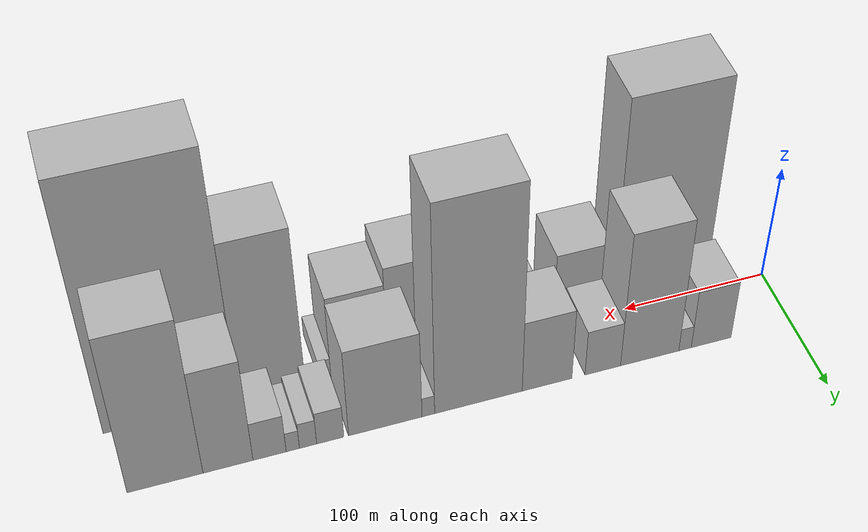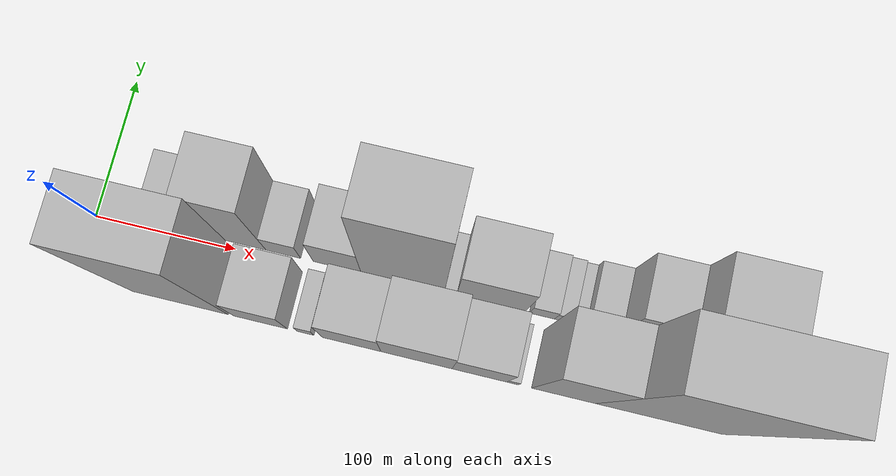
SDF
<sdf version="1.6">
 <world name="default">
  <scene>
   <sky><clouds><speed>12</speed></clouds></sky>
   <ambient>0.4 0.4 0.4 1</ambient>
   <background>0.7 0.7 0.7 1</background>
   <shadows>1</shadows>
  </scene>
  <gravity>0 0 -9.8066</gravity>
  <magnetic_field>6e-06 2.3e-05 -4.2e-05</magnetic_field>
  <physics default="0" name="default_physics" type="ode">
   <ode>
    <solver>
     <type>quick</type>
     <iters>10</iters>
     <sor>1.0</sor>
     <use_dynamic_moi_rescaling>0</use_dynamic_moi_rescaling>
    </solver>
    <constraints>
     <cfm>0</cfm>
     <erp>0.2</erp>
     <contact_max_correcting_vel>100</contact_max_correcting_vel>
     <contact_surface_layer>0.001</contact_surface_layer>
    </constraints>
   </ode>
   <max_step_size>0.004</max_step_size>
   <real_time_factor>1</real_time_factor>
   <real_time_update_rate>250</real_time_update_rate>
  </physics>
  <light name="sun" type="directional">
   <pose>0 0 10 0 0 0</pose>
   <diffuse>0.8 0.8 0.8 1</diffuse>
   <specular>0.2 0.2 0.2 1</specular>
   <attenuation>
    <range>1000</range>
    <constant>0.9</constant>
    <linear>0.01</linear>
    <quadratic>0.001</quadratic>
   </attenuation>
   <direction>-0.5 0.1 -0.9</direction>
  </light>
  <model name="building_1">
   <static>1</static>
   <pose>57.1358 24.5000 0 0.000000 0.000000 1.570796</pose>
   <link name="link">
    <pose>0 0 27.00 0 0 0</pose>
    <collision name="collision"><geometry><box><size>40.0000 28.2716 54.0000</size></box></geometry></collision>
    <visual name="visual">
     <cast_shadows>0</cast_shadows>
     <geometry><box><size>40.0000 28.2716 54.0000</size></box></geometry>
     <material>
      <script>
       <uri>model://HANNAS_wall/materials/scripts</uri>
       <uri>model://HANNAS_wall/materials/textures</uri>
       <name>vrc/HANNAS_wall</name>
      </script>
     </material>
    </visual>
   </link>
  </model>
  <model name="building_2">
   <static>1</static>
   <pose>75.6466 24.5000 0 0.000000 0.000000 1.570796</pose>
   <link name="link">
    <pose>0 0 10.50 0 0 0</pose>
    <collision name="collision"><geometry><box><size>40.0000 8.7501 21.0000</size></box></geometry></collision>
    <visual name="visual">
     <cast_shadows>0</cast_shadows>
     <geometry><box><size>40.0000 8.7501 21.0000</size></box></geometry>
     <material>
      <script>
       <uri>model://HANNAS_wall/materials/scripts</uri>
       <uri>model://HANNAS_wall/materials/textures</uri>
       <name>vrc/HANNAS_wall</name>
      </script>
     </material>
    </visual>
   </link>
  </model>
  <model name="building_3">
   <static>1</static>
   <pose>100.4074 24.5000 0 0.000000 0.000000 1.570796</pose>
   <link name="link">
    <pose>0 0 61.50 0 0 0</pose>
    <collision name="collision"><geometry><box><size>40.0000 40.7714 123.0000</size></box></geometry></collision>
    <visual name="visual">
     <cast_shadows>0</cast_shadows>
     <geometry><box><size>40.0000 40.7714 123.0000</size></box></geometry>
     <material>
      <script>
       <uri>model://HANNAS_wall/materials/scripts</uri>
       <uri>model://HANNAS_wall/materials/textures</uri>
       <name>vrc/HANNAS_wall</name>
      </script>
     </material>
    </visual>
   </link>
  </model>
  <model name="building_4">
   <static>1</static>
   <pose>133.0607 24.5000 0 0.000000 0.000000 1.570796</pose>
   <link name="link">
    <pose>0 0 21.00 0 0 0</pose>
    <collision name="collision"><geometry><box><size>40.0000 24.5352 42.0000</size></box></geometry></collision>
    <visual name="visual">
     <cast_shadows>0</cast_shadows>
     <geometry><box><size>40.0000 24.5352 42.0000</size></box></geometry>
     <material>
      <script>
       <uri>model://HANNAS_wall/materials/scripts</uri>
       <uri>model://HANNAS_wall/materials/textures</uri>
       <name>vrc/HANNAS_wall</name>
      </script>
     </material>
    </visual>
   </link>
  </model>
  <model name="building_5">
   <static>1</static>
   <pose>171.2471 24.5000 0 0.000000 0.000000 1.570796</pose>
   <link name="link">
    <pose>0 0 33.00 0 0 0</pose>
    <collision name="collision"><geometry><box><size>40.0000 33.8376 66.0000</size></box></geometry></collision>
    <visual name="visual">
     <cast_shadows>0</cast_shadows>
     <geometry><box><size>40.0000 33.8376 66.0000</size></box></geometry>
     <material>
      <script>
       <uri>model://HANNAS_wall/materials/scripts</uri>
       <uri>model://HANNAS_wall/materials/textures</uri>
       <name>vrc/HANNAS_wall</name>
      </script>
     </material>
    </visual>
   </link>
  </model>
  <model name="building_6">
   <static>1</static>
   <pose>217.4419 24.5000 0 0.000000 0.000000 1.570796</pose>
   <link name="link">
    <pose>0 0 94.50 0 0 0</pose>
    <collision name="collision"><geometry><box><size>40.0000 58.5521 189.0000</size></box></geometry></collision>
    <visual name="visual">
     <cast_shadows>0</cast_shadows>
     <geometry><box><size>40.0000 58.5521 189.0000</size></box></geometry>
     <material>
      <script>
       <uri>model://HANNAS_wall/materials/scripts</uri>
       <uri>model://HANNAS_wall/materials/textures</uri>
       <name>vrc/HANNAS_wall</name>
      </script>
     </material>
    </visual>
   </link>
  </model>
  <model name="building_7">
   <static>1</static>
   <pose>250.9183 24.5000 0 0.000000 0.000000 1.570796</pose>
   <link name="link">
    <pose>0 0 9.00 0 0 0</pose>
    <collision name="collision"><geometry><box><size>40.0000 8.4008 18.0000</size></box></geometry></collision>
    <visual name="visual">
     <cast_shadows>0</cast_shadows>
     <geometry><box><size>40.0000 8.4008 18.0000</size></box></geometry>
     <material>
      <script>
       <uri>model://HANNAS_wall/materials/scripts</uri>
       <uri>model://HANNAS_wall/materials/textures</uri>
       <name>vrc/HANNAS_wall</name>
      </script>
     </material>
    </visual>
   </link>
  </model>
  <model name="building_8">
   <static>1</static>
   <pose>279.1200 24.5000 0 0.000000 0.000000 1.570796</pose>
   <link name="link">
    <pose>0 0 40.50 0 0 0</pose>
    <collision name="collision"><geometry><box><size>40.0000 48.0025 81.0000</size></box></geometry></collision>
    <visual name="visual">
     <cast_shadows>0</cast_shadows>
     <geometry><box><size>40.0000 48.0025 81.0000</size></box></geometry>
     <material>
      <script>
       <uri>model://HANNAS_wall/materials/scripts</uri>
       <uri>model://HANNAS_wall/materials/textures</uri>
       <name>vrc/HANNAS_wall</name>
      </script>
     </material>
    </visual>
   </link>
  </model>
  <model name="building_9">
   <static>1</static>
   <pose>314.8700 24.5000 0 0.000000 0.000000 1.570796</pose>
   <link name="link">
    <pose>0 0 15.00 0 0 0</pose>
    <collision name="collision"><geometry><box><size>40.0000 17.4976 30.0000</size></box></geometry></collision>
    <visual name="visual">
     <cast_shadows>0</cast_shadows>
     <geometry><box><size>40.0000 17.4976 30.0000</size></box></geometry>
     <material>
      <script>
       <uri>model://HANNAS_wall/materials/scripts</uri>
       <uri>model://HANNAS_wall/materials/textures</uri>
       <name>vrc/HANNAS_wall</name>
      </script>
     </material>
    </visual>
   </link>
  </model>
  <model name="building_10">
   <static>1</static>
   <pose>329.1398 24.5000 0 0.000000 0.000000 1.570796</pose>
   <link name="link">
    <pose>0 0 12.00 0 0 0</pose>
    <collision name="collision"><geometry><box><size>40.0000 11.0420 24.0000</size></box></geometry></collision>
    <visual name="visual">
     <cast_shadows>0</cast_shadows>
     <geometry><box><size>40.0000 11.0420 24.0000</size></box></geometry>
     <material>
      <script>
       <uri>model://HANNAS_wall/materials/scripts</uri>
       <uri>model://HANNAS_wall/materials/textures</uri>
       <name>vrc/HANNAS_wall</name>
      </script>
     </material>
    </visual>
   </link>
  </model>
  <model name="building_11">
   <static>1</static>
   <pose>338.8888 24.5000 0 0.000000 0.000000 1.570796</pose>
   <link name="link">
    <pose>0 0 9.00 0 0 0</pose>
    <collision name="collision"><geometry><box><size>40.0000 8.4560 18.0000</size></box></geometry></collision>
    <visual name="visual">
     <cast_shadows>0</cast_shadows>
     <geometry><box><size>40.0000 8.4560 18.0000</size></box></geometry>
     <material>
      <script>
       <uri>model://HANNAS_wall/materials/scripts</uri>
       <uri>model://HANNAS_wall/materials/textures</uri>
       <name>vrc/HANNAS_wall</name>
      </script>
     </material>
    </visual>
   </link>
  </model>
  <model name="building_12">
   <static>1</static>
   <pose>353.6256 24.5000 0 0.000000 0.000000 1.570796</pose>
   <link name="link">
    <pose>0 0 18.00 0 0 0</pose>
    <collision name="collision"><geometry><box><size>40.0000 21.0176 36.0000</size></box></geometry></collision>
    <visual name="visual">
     <cast_shadows>0</cast_shadows>
     <geometry><box><size>40.0000 21.0176 36.0000</size></box></geometry>
     <material>
      <script>
       <uri>model://HANNAS_wall/materials/scripts</uri>
       <uri>model://HANNAS_wall/materials/textures</uri>
       <name>vrc/HANNAS_wall</name>
      </script>
     </material>
    </visual>
   </link>
  </model>
  <model name="building_13">
   <static>1</static>
   <pose>379.8523 24.5000 0 0.000000 0.000000 1.570796</pose>
   <link name="link">
    <pose>0 0 48.00 0 0 0</pose>
    <collision name="collision"><geometry><box><size>40.0000 31.4357 96.0000</size></box></geometry></collision>
    <visual name="visual">
     <cast_shadows>0</cast_shadows>
     <geometry><box><size>40.0000 31.4357 96.0000</size></box></geometry>
     <material>
      <script>
       <uri>model://HANNAS_wall/materials/scripts</uri>
       <uri>model://HANNAS_wall/materials/textures</uri>
       <name>vrc/HANNAS_wall</name>
      </script>
     </material>
    </visual>
   </link>
  </model>
  <model name="building_14">
   <static>1</static>
   <pose>419.0735 24.5000 0 0.000000 0.000000 1.570796</pose>
   <link name="link">
    <pose>0 0 72.00 0 0 0</pose>
    <collision name="collision"><geometry><box><size>40.0000 47.0068 144.0000</size></box></geometry></collision>
    <visual name="visual">
     <cast_shadows>0</cast_shadows>
     <geometry><box><size>40.0000 47.0068 144.0000</size></box></geometry>
     <material>
      <script>
       <uri>model://HANNAS_wall/materials/scripts</uri>
       <uri>model://HANNAS_wall/materials/textures</uri>
       <name>vrc/HANNAS_wall</name>
      </script>
     </material>
    </visual>
   </link>
  </model>
  <model name="building_15">
   <static>1</static>
   <pose>73.7145 -24.5000 0 0.000000 0.000000 1.570796</pose>
   <link name="link">
    <pose>0 0 93.00 0 0 0</pose>
    <collision name="collision"><geometry><box><size>40.0000 67.4290 186.0000</size></box></geometry></collision>
    <visual name="visual">
     <cast_shadows>0</cast_shadows>
     <geometry><box><size>40.0000 67.4290 186.0000</size></box></geometry>
     <material>
      <script>
       <uri>model://HANNAS_wall/materials/scripts</uri>
       <uri>model://HANNAS_wall/materials/textures</uri>
       <name>vrc/HANNAS_wall</name>
      </script>
     </material>
    </visual>
   </link>
  </model>
  <model name="building_16">
   <static>1</static>
   <pose>130.2080 -24.5000 0 0.000000 0.000000 1.570796</pose>
   <link name="link">
    <pose>0 0 31.50 0 0 0</pose>
    <collision name="collision"><geometry><box><size>40.0000 37.5580 63.0000</size></box></geometry></collision>
    <visual name="visual">
     <cast_shadows>0</cast_shadows>
     <geometry><box><size>40.0000 37.5580 63.0000</size></box></geometry>
     <material>
      <script>
       <uri>model://HANNAS_wall/materials/scripts</uri>
       <uri>model://HANNAS_wall/materials/textures</uri>
       <name>vrc/HANNAS_wall</name>
      </script>
     </material>
    </visual>
   </link>
  </model>
  <model name="building_17">
   <static>1</static>
   <pose>161.7956 -24.5000 0 0.000000 0.000000 1.570796</pose>
   <link name="link">
    <pose>0 0 13.50 0 0 0</pose>
    <collision name="collision"><geometry><box><size>40.0000 11.6174 27.0000</size></box></geometry></collision>
    <visual name="visual">
     <cast_shadows>0</cast_shadows>
     <geometry><box><size>40.0000 11.6174 27.0000</size></box></geometry>
     <material>
      <script>
       <uri>model://HANNAS_wall/materials/scripts</uri>
       <uri>model://HANNAS_wall/materials/textures</uri>
       <name>vrc/HANNAS_wall</name>
      </script>
     </material>
    </visual>
   </link>
  </model>
  <model name="building_18">
   <static>1</static>
   <pose>193.9134 -24.5000 0 0.000000 0.000000 1.570796</pose>
   <link name="link">
    <pose>0 0 37.50 0 0 0</pose>
    <collision name="collision"><geometry><box><size>40.0000 40.6183 75.0000</size></box></geometry></collision>
    <visual name="visual">
     <cast_shadows>0</cast_shadows>
     <geometry><box><size>40.0000 40.6183 75.0000</size></box></geometry>
     <material>
      <script>
       <uri>model://HANNAS_wall/materials/scripts</uri>
       <uri>model://HANNAS_wall/materials/textures</uri>
       <name>vrc/HANNAS_wall</name>
      </script>
     </material>
    </visual>
   </link>
  </model>
  <model name="building_19">
   <static>1</static>
   <pose>238.8844 -24.5000 0 0.000000 0.000000 1.570796</pose>
   <link name="link">
    <pose>0 0 45.00 0 0 0</pose>
    <collision name="collision"><geometry><box><size>40.0000 49.3237 90.0000</size></box></geometry></collision>
    <visual name="visual">
     <cast_shadows>0</cast_shadows>
     <geometry><box><size>40.0000 49.3237 90.0000</size></box></geometry>
     <material>
      <script>
       <uri>model://HANNAS_wall/materials/scripts</uri>
       <uri>model://HANNAS_wall/materials/textures</uri>
       <name>vrc/HANNAS_wall</name>
      </script>
     </material>
    </visual>
   </link>
  </model>
  <model name="building_20">
   <static>1</static>
   <pose>282.4290 -24.5000 0 0.000000 0.000000 1.570796</pose>
   <link name="link">
    <pose>0 0 37.50 0 0 0</pose>
    <collision name="collision"><geometry><box><size>40.0000 37.7654 75.0000</size></box></geometry></collision>
    <visual name="visual">
     <cast_shadows>0</cast_shadows>
     <geometry><box><size>40.0000 37.7654 75.0000</size></box></geometry>
     <material>
      <script>
       <uri>model://HANNAS_wall/materials/scripts</uri>
       <uri>model://HANNAS_wall/materials/textures</uri>
       <name>vrc/HANNAS_wall</name>
      </script>
     </material>
    </visual>
   </link>
  </model>
  <model name="building_21">
   <static>1</static>
   <pose>305.3444 -24.5000 0 0.000000 0.000000 1.570796</pose>
   <link name="link">
    <pose>0 0 9.00 0 0 0</pose>
    <collision name="collision"><geometry><box><size>40.0000 8.0654 18.0000</size></box></geometry></collision>
    <visual name="visual">
     <cast_shadows>0</cast_shadows>
     <geometry><box><size>40.0000 8.0654 18.0000</size></box></geometry>
     <material>
      <script>
       <uri>model://HANNAS_wall/materials/scripts</uri>
       <uri>model://HANNAS_wall/materials/textures</uri>
       <name>vrc/HANNAS_wall</name>
      </script>
     </material>
    </visual>
   </link>
  </model>
  <model name="building_22">
   <static>1</static>
   <pose>340.2883 -24.5000 0 0.000000 0.000000 1.570796</pose>
   <link name="link">
    <pose>0 0 72.00 0 0 0</pose>
    <collision name="collision"><geometry><box><size>40.0000 43.8223 144.0000</size></box></geometry></collision>
    <visual name="visual">
     <cast_shadows>0</cast_shadows>
     <geometry><box><size>40.0000 43.8223 144.0000</size></box></geometry>
     <material>
      <script>
       <uri>model://HANNAS_wall/materials/scripts</uri>
       <uri>model://HANNAS_wall/materials/textures</uri>
       <name>vrc/HANNAS_wall</name>
      </script>
     </material>
    </visual>
   </link>
  </model>
  <model name="building_23">
   <static>1</static>
   <pose>405.4164 -24.5000 0 0.000000 0.000000 1.570796</pose>
   <link name="link">
    <pose>0 0 111.00 0 0 0</pose>
    <collision name="collision"><geometry><box><size>40.0000 86.4339 222.0000</size></box></geometry></collision>
    <visual name="visual">
     <cast_shadows>0</cast_shadows>
     <geometry><box><size>40.0000 86.4339 222.0000</size></box></geometry>
     <material>
      <script>
       <uri>model://HANNAS_wall/materials/scripts</uri>
       <uri>model://HANNAS_wall/materials/textures</uri>
       <name>vrc/HANNAS_wall</name>
      </script>
     </material>
    </visual>
   </link>
  </model>
 </world>
</sdf>
